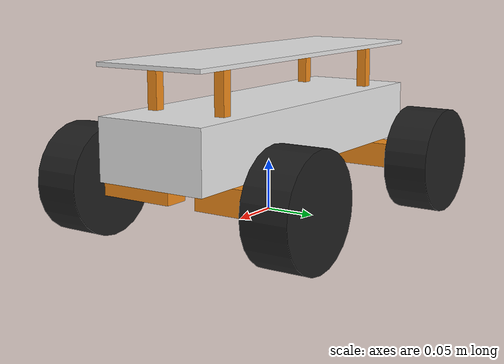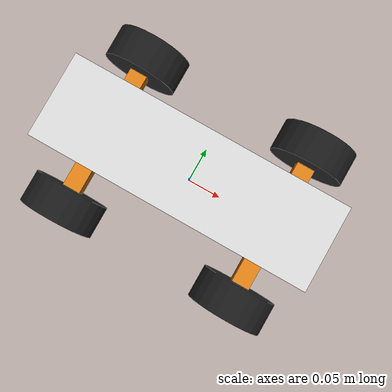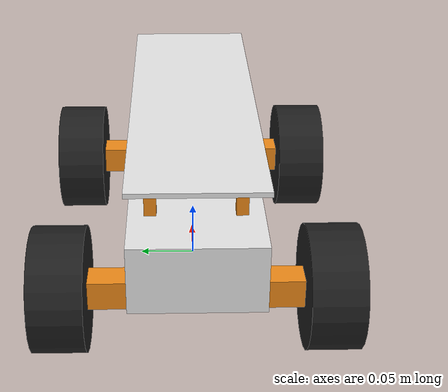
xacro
<?xml version="1.0"?>
<robot xmlns:xacro="http://www.ros.org/wiki/xacro">

    <!-- Include macros -->
    <xacro:include filename="$(find charlie_description)/macros/inertial_macros.xacro"/>

    <xacro:property name="rad_w" value="0.053"/>
    <xacro:property name="le_w" value="0.045"/>
    <xacro:property name="ly" value="0.11072"/>
    <xacro:property name="lx" value="0.367"/>
    <xacro:property name="lz" value="0.058"/>
    <xacro:property name="bscy" value="0.01"/>
    <xacro:property name="bscx" value="0.01"/>
    <xacro:property name="bscz" value="0.043"/>
    <xacro:property name="bhz" value="0.025"/>
    <xacro:property name="bhy" value="0.075"/>
    <xacro:property name="bhx" value="0.025"/>
    <xacro:property name="imu_lx" value="0.03"/>
    <xacro:property name="imu_ly" value="0.03"/>
    <xacro:property name="imu_lz" value="0.01"/>

    <xacro:macro name="phantom_steer_link" params="p_name">
        <link name="${p_name}">
            <inertial>
                <mass value="0.05"/>
                <origin xyz="0 0 0" rpy="0 0 0"/>
                <inertia ixx="0.00001" ixy="0" ixz="0" iyy="0.00001" iyz="0" izz="0.00001"/>
            </inertial>
        </link>
    </xacro:macro>

    <xacro:macro name="wheel_macro" params="p_name p_radius p_width">
        <link name="${p_name}">
            <visual>
                <geometry>
                    <cylinder radius="${p_radius}" length="${p_width}"/>
                </geometry>
                <material name="black"/>
            </visual>
            <collision>
                <geometry>
                    <sphere radius="${p_radius}" />
                </geometry>
            </collision>
            <xacro:inertial_cylinder mass="0.1" length="${p_width}" radius="${p_radius}">
                <origin xyz="0 0 0" rpy="0 0 0"/>
            </xacro:inertial_cylinder>
        </link>
        <gazebo reference="${p_name}">
            <mu1>1.0</mu1>
            <mu2>0.5</mu2>
            <kp>100000.0</kp>
            <kd>100.0</kd>
            <minDepth>0.001</minDepth>
            <maxVel>0.1</maxVel>
        </gazebo>
    </xacro:macro>

    <xacro:macro name="barras" params="p_name p_x p_y p_z">
        <link name="${p_name}">
            <visual>
                <origin xyz="0 0 0"/>
                <geometry>
                    <box size="${p_x} ${p_y} ${p_z}"/>
                </geometry>
                <material name="orange"/>
            </visual>
            <collision>
                <origin xyz="0 0 0"/>
                <geometry>
                <box size="${p_x} ${p_y} ${p_z}"/>
                </geometry>
            </collision>
            <xacro:inertial_box mass="2.0" x="${p_x}" y="${p_y}" z="${p_z}">
                <origin xyz="0 0 0" rpy="0 0 0"/>
            </xacro:inertial_box>
        </link>
    </xacro:macro>

    <xacro:macro name="barra_horizontal" params="p_name p_x p_y p_z origin">
        <link name="${p_name}">
            <visual>
                <origin xyz="0 ${origin} 0"/>
                <geometry>
                    <box size="${p_x} ${p_y} ${p_z}"/>
                </geometry>
                <material name="orange"/>
            </visual>
            <collision>
                <origin xyz="0 ${origin} 0"/>
                <geometry>
                <box size="${p_x} ${p_y} ${p_z}"/>
                </geometry>
            </collision>
            <xacro:inertial_box mass="2.0" x="${p_x}" y="${p_y}" z="${p_z}">
                <origin xyz="0 0 0" rpy="0 0 0"/>
            </xacro:inertial_box>
        </link>
    </xacro:macro>

    <link name="base_link"></link>

    <joint name="base_link_joint" type="fixed">
        <parent link="base_link"/>
        <child link="chassis"/>
        <origin xyz="0 0 ${0.055+(lz/2)}"/>
    </joint>

    <link name="chassis">
        <visual>
            <origin xyz="0 0 0"/>
            <geometry>
                <box size="${lx} ${ly} ${lz}"/>
            </geometry>
            <material name="white"/>
        </visual>
        <collision>
            <origin xyz="0 0 0"/>
            <geometry>
               <box size="${lx} ${ly} ${lz}"/>
            </geometry>
        </collision>
        <xacro:inertial_box mass="5.0" x="${lx}" y="${ly}" z="${lz}">
            <origin xyz="0 0 0" rpy="0 0 0"/>
        </xacro:inertial_box>
    </link>

    <joint name="chassis_soporte" type="fixed">
        <parent link="chassis"/>
        <child link="soporte"/>
        <origin xyz="0 0 ${(lz/2)+(bscz)+0.002}"/>
    </joint>

    <link name="soporte">
        <visual>
            <origin xyz="0 0 0"/>
            <geometry>
                <box size="${lx} ${ly} ${0.004}"/>
            </geometry>
            <material name="white"/>
        </visual>
        <collision>
            <origin xyz="0 0 0"/>
            <geometry>
               <box size="${lx} ${ly} ${0.004}"/>
            </geometry>
        </collision>
        <xacro:inertial_box mass="5.0" x="${lx}" y="${ly}" z="${0.004}">
            <origin xyz="0 0 0" rpy="0 0 0"/>
        </xacro:inertial_box>
    </link>

    <joint name="chassis_verticalbar_1" type="fixed">
        <parent link="chassis"/>
        <child link="barra_vertical_tr_link"/>
        <origin xyz="${-0.257/2} ${ly/3} ${bscz+0.008}"/>
    </joint>
    <xacro:barras p_name="barra_vertical_tr_link" p_x="${bscx}" p_y="${bscy}" p_z="${bscz}"/>

    <joint name="chassis_verticalbar_2" type="fixed">
        <parent link="chassis"/>
        <child link="barra_vertical_tr_l_link"/>
        <origin xyz="${-0.257/2} ${-ly/3} ${bscz+0.008}"/>
    </joint>
    <xacro:barras p_name="barra_vertical_tr_l_link" p_x="${bscx}" p_y="${bscy}" p_z="${bscz}"/>

    <joint name="chassis_verticalbar_3" type="fixed">
        <parent link="chassis"/>
        <child link="barra_vertical_de_link"/>
        <origin xyz="${0.257/2} ${ly/3} ${bscz+0.008}"/>
    </joint>
    <xacro:barras p_name="barra_vertical_de_link" p_x="${bscx}" p_y="${bscy}" p_z="${bscz}"/>

    <joint name="chassis_verticalbar_4" type="fixed">
        <parent link="chassis"/>
        <child link="barra_vertical_de_l_link"/>
        <origin xyz="${0.257/2} ${-ly/3} ${bscz+0.008}"/>
    </joint>
    <xacro:barras p_name="barra_vertical_de_l_link" p_x="${bscx}" p_y="${bscy}" p_z="${bscz}"/>

    <joint name="chassis_horizontalbar_tr" type="fixed">
        <parent link="chassis"/>
        <child link="barra_horizontal_tr_link"/>
        <origin xyz="${-0.257/2} 0.035  ${-(lz+bhz)/2}" rpy="0 0 0"/>
    </joint>
    <xacro:barra_horizontal p_name="barra_horizontal_tr_link" p_x="${bhx}" p_y="${bhy}" p_z="${bhz}" origin="${0.0175}"/>

    <joint name="rightb_wheel_joint" type="continuous">
        <parent link="barra_horizontal_tr_link"/>
        <child link="rightb_wheel"/>
        <origin xyz="0 ${0.055+le_w/2} 0" rpy="-${pi/2} 0 0"/>
        <axis xyz="0 0 1"/>
        <dynamics damping="0.2" friction="0.0"/>
    </joint>
    <xacro:wheel_macro p_name="rightb_wheel" p_radius="${rad_w}" p_width="${le_w}"/>

    <joint name="chassis_horizontalbar_ti" type="fixed">
        <parent link="chassis"/>
        <child link="barra_horizontal_ti_link"/>
        <origin xyz="${-0.257/2} -0.035  ${-(lz+bhz)/2}" rpy="0 0 0"/>
    </joint>
    <xacro:barra_horizontal p_name="barra_horizontal_ti_link" p_x="${bhx}" p_y="${bhy}" p_z="${bhz}" origin="${-0.0175}"/>

    <joint name="leftb_wheel_joint" type="continuous">
        <parent link="barra_horizontal_ti_link"/>
        <child link="leftb_wheel"/>
        <origin xyz="0 ${-(0.055+le_w/2)} 0" rpy="-${pi/2} 0 0"/>
        <axis xyz="0 0 1"/>
        <dynamics damping="0.2" friction="0.0"/>
    </joint>
    <xacro:wheel_macro p_name="leftb_wheel" p_radius="${rad_w}" p_width="${le_w}"/>

    <joint name="chassis_horizontalbar_fr" type="fixed">
        <parent link="chassis"/>
        <child link="barra_horizontal_fr_link"/>
        <origin xyz="${0.257/2} 0.035  ${-(lz+bhz)/2}" rpy="0 0 0"/>
    </joint>
    <xacro:barra_horizontal p_name="barra_horizontal_fr_link" p_x="${bhx}" p_y="${bhy}" p_z="${bhz}" origin="${0.0175}"/>

    <xacro:phantom_steer_link p_name="right_steering_link"/>
    <joint name="right_steering_joint" type="revolute">
        <parent link="barra_horizontal_fr_link"/>
        <child link="right_steering_link"/>
        <origin xyz="0 ${0.055+le_w/2} 0" rpy="0 0 0"/>
        <axis xyz="0 0 1"/>
        <limit effort="500.0" lower="-${pi/4}" upper="${pi/4}" velocity="5.0"/>
        <dynamics damping="0.2" friction="0.1"/>
    </joint>

    <joint name="rightf_wheel_joint" type="continuous">
        <parent link="right_steering_link"/>
        <child link="rightf_wheel"/>
        <origin xyz="0 0 0" rpy="-${pi/2} 0 0"/>
        <axis xyz="0 0 1"/>
        <dynamics damping="0.2" friction="0.0"/>
    </joint>
    <xacro:wheel_macro p_name="rightf_wheel" p_radius="${rad_w}" p_width="${le_w}"/>

    <joint name="chassis_horizontalbar_fi" type="fixed">
        <parent link="chassis"/>
        <child link="barra_horizontal_fi_link"/>
        <origin xyz="${0.257/2} -0.035  ${-(lz+bhz)/2}" rpy="0 0 0"/>
    </joint>
    <xacro:barra_horizontal p_name="barra_horizontal_fi_link" p_x="${bhx}" p_y="${bhy}" p_z="${bhz}" origin="${-0.0175}"/>

    <xacro:phantom_steer_link p_name="left_steering_link"/>
    <joint name="left_steering_joint" type="revolute">
        <parent link="barra_horizontal_fi_link"/>
        <child link="left_steering_link"/>
        <origin xyz="0 ${-(0.055+le_w/2)} 0" rpy="0 0 0"/>
        <axis xyz="0 0 1"/>
        <limit effort="500.0" lower="-${pi/4}" upper="${pi/4}" velocity="5.0"/>
        <dynamics damping="0.2" friction="0.1"/>
    </joint>

    <joint name="leftf_wheel_joint" type="continuous">
        <parent link="left_steering_link"/>
        <child link="leftf_wheel"/>
        <origin xyz="0 0 0" rpy="-${pi/2} 0 0"/>
        <axis xyz="0 0 1"/>
        <dynamics damping="0.2" friction="0.0"/>
    </joint>
    <xacro:wheel_macro p_name="leftf_wheel" p_radius="${rad_w}" p_width="${le_w}"/>

</robot>

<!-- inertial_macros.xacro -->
<robot xmlns:xacro="http://www.ros.org/wiki/xacro" >

    <!-- Specify some standard inertial calculations https://en.wikipedia.org/wiki/List_of_moments_of_inertia -->
    <!-- These make use of xacro's mathematical functionality -->

    <xacro:macro name="inertial_sphere" params="mass radius *origin">
        <inertial>
            <xacro:insert_block name="origin"/>
            <mass value="${mass}" />
            <inertia ixx="${(2/5) * mass * (radius*radius)}" ixy="0.0" ixz="0.0"
                    iyy="${(2/5) * mass * (radius*radius)}" iyz="0.0"
                    izz="${(2/5) * mass * (radius*radius)}" />
        </inertial>
    </xacro:macro>

    <xacro:macro name="inertial_box" params="mass x y z *origin">
        <inertial>
            <xacro:insert_block name="origin"/>
            <mass value="${mass}" />
            <inertia ixx="${(1/12) * mass * (y*y+z*z)}" ixy="0.0" ixz="0.0"
                    iyy="${(1/12) * mass * (x*x+z*z)}" iyz="0.0"
                    izz="${(1/12) * mass * (x*x+y*y)}" />
        </inertial>
    </xacro:macro>

    <xacro:macro name="inertial_cylinder" params="mass length radius *origin">
        <inertial>
            <xacro:insert_block name="origin"/>
            <mass value="${mass}" />
            <inertia ixx="${(1/12) * mass * (3*radius*radius + length*length)}" ixy="0.0" ixz="0.0"
                    iyy="${(1/12) * mass * (3*radius*radius + length*length)}" iyz="0.0"
                    izz="${(1/2) * mass * (radius*radius)}" />
        </inertial>
    </xacro:macro>
</robot>
